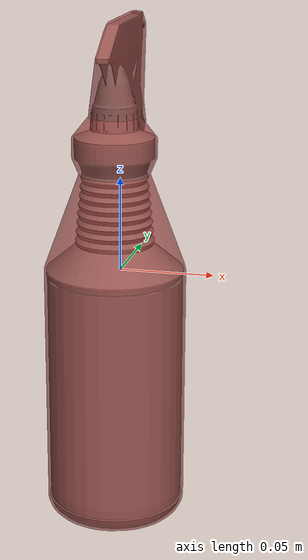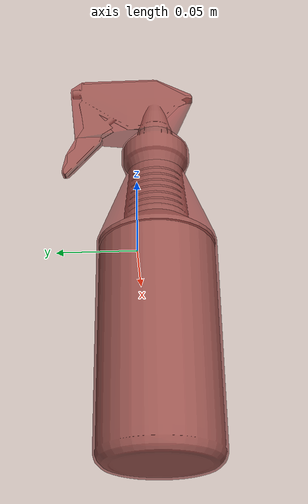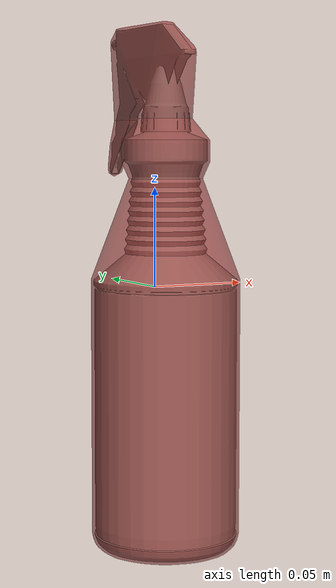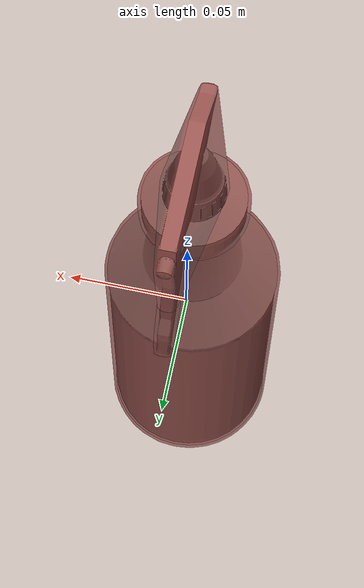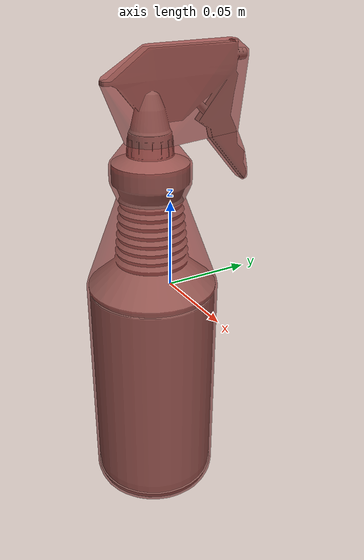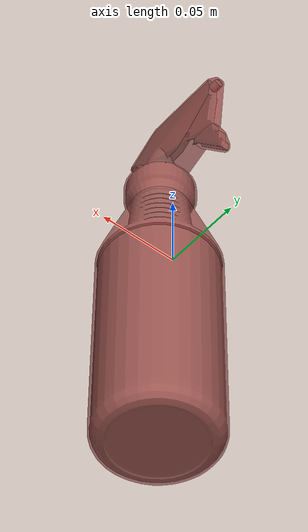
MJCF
<?xml version='1.0' encoding='utf-8'?>
<mujoco model="model">
  <option timestep="0.002" gravity="0.0 0.0 -9.81" />
  <compiler angle="radian" />
  <asset>
    <mesh file="visual/Spray003.obj" name="Spray003_vis" />
    <texture file="visual/T_BC001.png" name="Spray003_material" type="2d" />
    <material name="Spray003_material" rgba="1 1 1 1.0" texture="Spray003_material" shininess="0.4472135901451111" specular="0.3103448502657381" />
    <mesh file="collision/collision_mesh_collision_0.obj" name="Spray003_collision_mesh_0" />
    <mesh file="collision/collision_mesh_collision_1.obj" name="Spray003_collision_mesh_1" />
    <mesh file="collision/collision_mesh_collision_2.obj" name="Spray003_collision_mesh_2" />
    <mesh file="collision/collision_mesh_collision_3.obj" name="Spray003_collision_mesh_3" />
  </asset>
  <default>
    <default class="visual">
      <geom conaffinity="0" contype="0" group="1" type="mesh" />
    </default>
    <default class="collision">
      <geom group="0" rgba="0.5 0 0 0.5" density="1.0" solref="0.004 1" solimp="0.998 0.998 0.001" />
    </default>
    <default class="spawn">
      <geom group="0" rgba="1 1 1 0.5" contype="0" conaffinity="0" />
      <site group="0" rgba="1 1 1 0.5" />
    </default>
    <default class="region">
      <geom group="1" conaffinity="0" contype="0" rgba="0 1 0 0" mass="0" />
    </default>
  </default>
  <worldbody>
    <body>
      <body name="object">
        <geom mesh="Spray003_vis" type="mesh" solimp="0.998 0.998 0.001" solref="0.001 1" friction="0.95 0.3 0.1" class="visual" material="Spray003_material" />
        <geom class="region" name="reg_bbox" type="box" pos="2.5000000000025e-07 -3.8854999999997364e-05 -8.600999999999748e-05" size="0.03713349 0.049041885 0.13232055" />
        <geom mesh="Spray003_collision_mesh_0" type="mesh" class="collision" />
        <geom mesh="Spray003_collision_mesh_1" type="mesh" class="collision" />
        <geom mesh="Spray003_collision_mesh_2" type="mesh" class="collision" />
        <geom mesh="Spray003_collision_mesh_3" type="mesh" class="collision" />
      </body>
    <site rgba="0 0 0 0" size="0.005" pos="0 0 -0.13240656" name="bottom_site" /><site rgba="0 0 0 0" size="0.005" pos="0 0 0.13223454" name="top_site" /><site rgba="0 0 0 0" size="0.005" pos="0.04908074 0.04908074 0" name="horizontal_radius_site" /></body>
  </worldbody>
  <actuator />
</mujoco>
